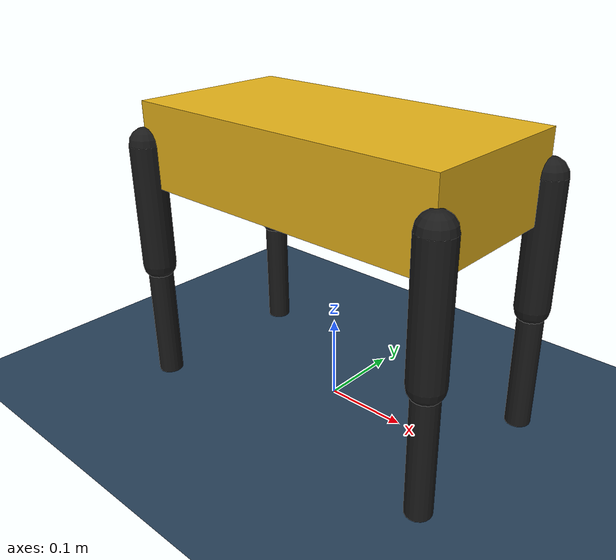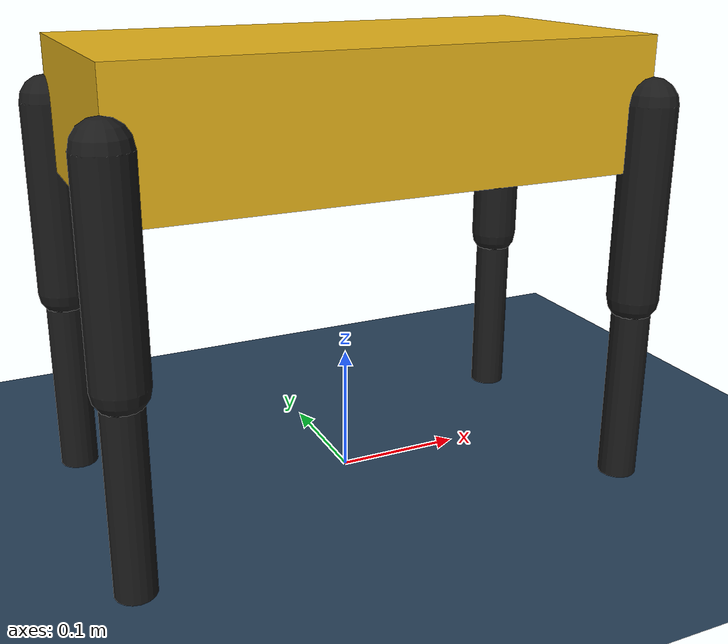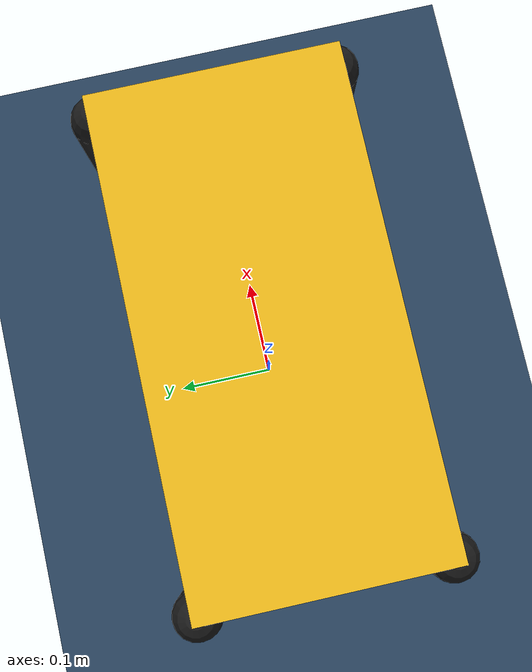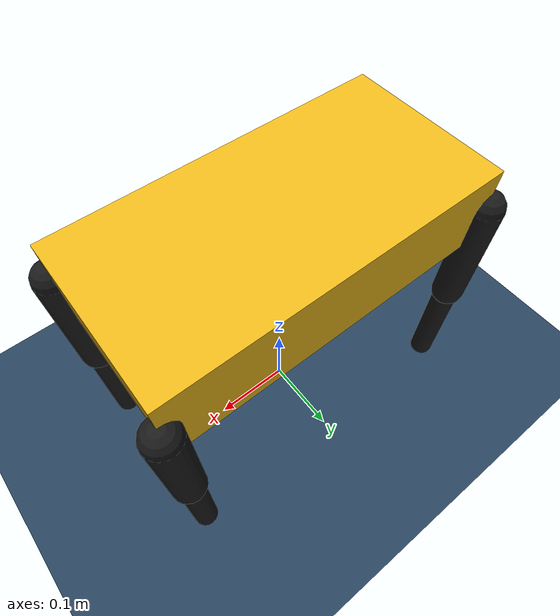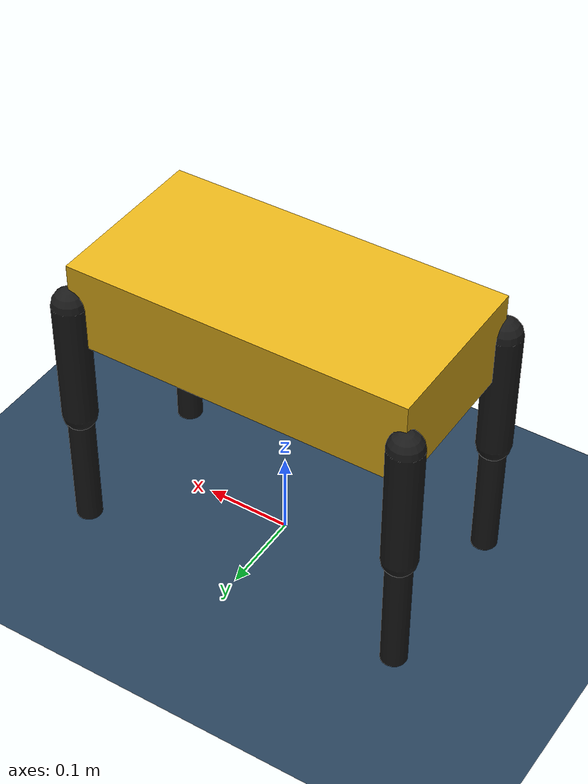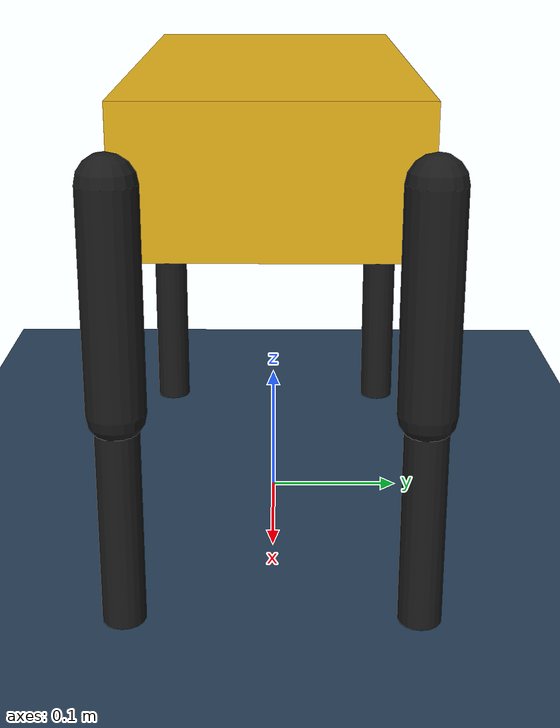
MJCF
<mujoco model="mini_spot">
    <compiler angle="radian" coordinate="local" inertiafromgeom="true"/>
    <option gravity="0 0 -9.81" timestep="0.01"/>

    <asset>
        <!-- Custom grid floor texture -->
        <texture type="2d" name="grid" builtin="checker" rgb1="0.1 0.2 0.3" rgb2="0.2 0.3 0.4" width="512" height="512"/>
        <material name="mat_floor" texture="grid" texrepeat="1 1" texuniform="true" reflectance="0.2"/>

        <!-- Boston Dynamics Colors -->
        <material name="mat_torso" rgba="0.9 0.7 0.1 1"/>
        <material name="mat_leg" rgba="0.1 0.1 0.1 1"/>
    </asset>

    <worldbody>
        <!-- Dynamic Lighting and Shadows -->
        <light pos="0 0 5" dir="0 0 -1" directional="true" castshadow="true"/>
        <geom name="floor" type="plane" size="10 10 0.1" material="mat_floor" friction="1.0 0.005 0.0001"/>

        <!-- MAIN TORSO -->
        <body name="torso" pos="0 0 0.3">
            <freejoint name="root"/>
            <geom name="torso_geom" type="box" size="0.2 0.1 0.05" mass="5.0" material="mat_torso"/>

            <!-- FRONT LEFT LEG -->
            <body name="fl_thigh" pos="0.2 0.1 0">
                <joint name="fl_hip" type="hinge" axis="0 1 0" range="-1.0 1.0"/>
                <geom type="capsule" size="0.02" fromto="0 0 0 0 0 -0.15" material="mat_leg"/>
                <body name="fl_calf" pos="0 0 -0.15">
                    <joint name="fl_knee" type="hinge" axis="0 1 0" range="-1.5 0.0"/>
                    <geom type="capsule" size="0.015" fromto="0 0 0 0 0 -0.15" material="mat_leg"/>
                </body>
            </body>

            <!-- FRONT RIGHT LEG -->
            <body name="fr_thigh" pos="0.2 -0.1 0">
                <joint name="fr_hip" type="hinge" axis="0 1 0" range="-1.0 1.0"/>
                <geom type="capsule" size="0.02" fromto="0 0 0 0 0 -0.15" material="mat_leg"/>
                <body name="fr_calf" pos="0 0 -0.15">
                    <joint name="fr_knee" type="hinge" axis="0 1 0" range="-1.5 0.0"/>
                    <geom type="capsule" size="0.015" fromto="0 0 0 0 0 -0.15" material="mat_leg"/>
                </body>
            </body>

            <!-- BACK LEFT LEG -->
            <body name="bl_thigh" pos="-0.2 0.1 0">
                <joint name="bl_hip" type="hinge" axis="0 1 0" range="-1.0 1.0"/>
                <geom type="capsule" size="0.02" fromto="0 0 0 0 0 -0.15" material="mat_leg"/>
                <body name="bl_calf" pos="0 0 -0.15">
                    <joint name="bl_knee" type="hinge" axis="0 1 0" range="-1.5 0.0"/>
                    <geom type="capsule" size="0.015" fromto="0 0 0 0 0 -0.15" material="mat_leg"/>
                </body>
            </body>

            <!-- BACK RIGHT LEG -->
            <body name="br_thigh" pos="-0.2 -0.1 0">
                <joint name="br_hip" type="hinge" axis="0 1 0" range="-1.0 1.0"/>
                <geom type="capsule" size="0.02" fromto="0 0 0 0 0 -0.15" material="mat_leg"/>
                <body name="br_calf" pos="0 0 -0.15">
                    <joint name="br_knee" type="hinge" axis="0 1 0" range="-1.5 0.0"/>
                    <geom type="capsule" size="0.015" fromto="0 0 0 0 0 -0.15" material="mat_leg"/>
                </body>
            </body>
        </body>
    </worldbody>

    <actuator>
        <position name="fl_hip_motor" joint="fl_hip" kp="30"/>
        <position name="fl_knee_motor" joint="fl_knee" kp="30"/>
        <position name="fr_hip_motor" joint="fr_hip" kp="30"/>
        <position name="fr_knee_motor" joint="fr_knee" kp="30"/>
        <position name="bl_hip_motor" joint="bl_hip" kp="30"/>
        <position name="bl_knee_motor" joint="bl_knee" kp="30"/>
        <position name="br_hip_motor" joint="br_hip" kp="30"/>
        <position name="br_knee_motor" joint="br_knee" kp="30"/>
    </actuator>
</mujoco>
